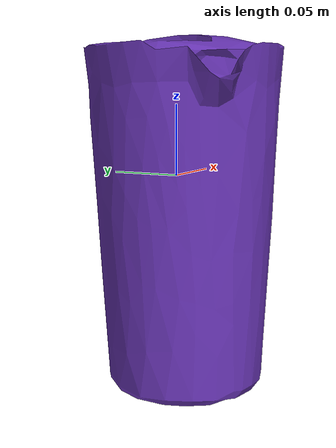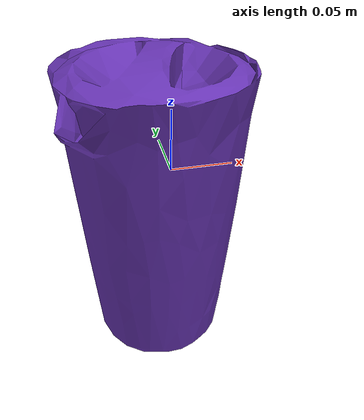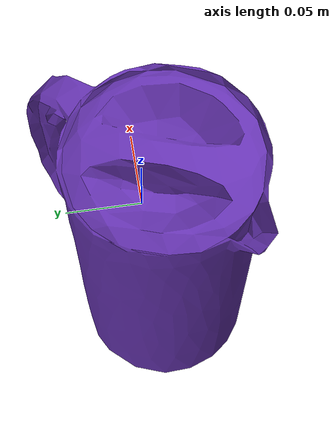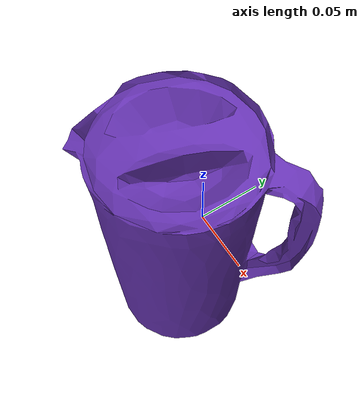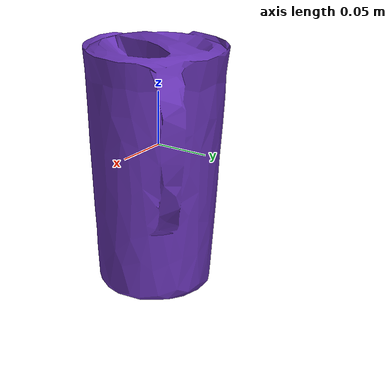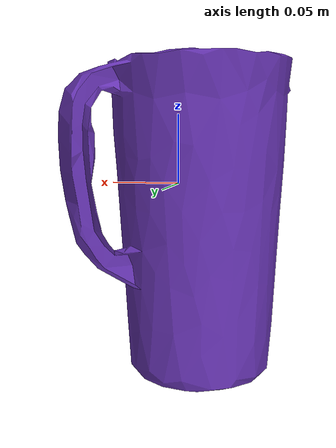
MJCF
<mujoco model="top_watertight_tiny">

  <asset>
    <mesh file="top_watertight_tiny.obj"/>
    <mesh file="top_watertight_tiny_collision_0.obj"/>
    <mesh file="top_watertight_tiny_collision_1.obj"/>
    <mesh file="top_watertight_tiny_collision_2.obj"/>
    <mesh file="top_watertight_tiny_collision_3.obj"/>
    <mesh file="top_watertight_tiny_collision_4.obj"/>
    <mesh file="top_watertight_tiny_collision_5.obj"/>
    <mesh file="top_watertight_tiny_collision_6.obj"/>
    <mesh file="top_watertight_tiny_collision_7.obj"/>
    <mesh file="top_watertight_tiny_collision_8.obj"/>
    <mesh file="top_watertight_tiny_collision_9.obj"/>
    <mesh file="top_watertight_tiny_collision_10.obj"/>
    <mesh file="top_watertight_tiny_collision_11.obj"/>
    <mesh file="top_watertight_tiny_collision_12.obj"/>
    <mesh file="top_watertight_tiny_collision_13.obj"/>
    <mesh file="top_watertight_tiny_collision_14.obj"/>
    <mesh file="top_watertight_tiny_collision_15.obj"/>
    <mesh file="top_watertight_tiny_collision_16.obj"/>
    <mesh file="top_watertight_tiny_collision_17.obj"/>
    <mesh file="top_watertight_tiny_collision_18.obj"/>
    <mesh file="top_watertight_tiny_collision_19.obj"/>
    <mesh file="top_watertight_tiny_collision_20.obj"/>
    <mesh file="top_watertight_tiny_collision_21.obj"/>
    <mesh file="top_watertight_tiny_collision_22.obj"/>
    <mesh file="top_watertight_tiny_collision_23.obj"/>
    <mesh file="top_watertight_tiny_collision_24.obj"/>
    <mesh file="top_watertight_tiny_collision_25.obj"/>
    <mesh file="top_watertight_tiny_collision_26.obj"/>
    <mesh file="top_watertight_tiny_collision_27.obj"/>
    <mesh file="top_watertight_tiny_collision_28.obj"/>
    <mesh file="top_watertight_tiny_collision_29.obj"/>
    <mesh file="top_watertight_tiny_collision_30.obj"/>
    <mesh file="top_watertight_tiny_collision_31.obj"/>
    <mesh file="top_watertight_tiny_collision_32.obj"/>
    <mesh file="top_watertight_tiny_collision_33.obj"/>
    <mesh file="top_watertight_tiny_collision_34.obj"/>
    <mesh file="top_watertight_tiny_collision_35.obj"/>
    <mesh file="top_watertight_tiny_collision_36.obj"/>
    <mesh file="top_watertight_tiny_collision_37.obj"/>
    <mesh file="top_watertight_tiny_collision_38.obj"/>
    <mesh file="top_watertight_tiny_collision_39.obj"/>
    <mesh file="top_watertight_tiny_collision_40.obj"/>
    <mesh file="top_watertight_tiny_collision_41.obj"/>
    <mesh file="top_watertight_tiny_collision_42.obj"/>
    <mesh file="top_watertight_tiny_collision_43.obj"/>
    <mesh file="top_watertight_tiny_collision_44.obj"/>
    <mesh file="top_watertight_tiny_collision_45.obj"/>
    <mesh file="top_watertight_tiny_collision_46.obj"/>
    <mesh file="top_watertight_tiny_collision_47.obj"/>
    <mesh file="top_watertight_tiny_collision_48.obj"/>
    <mesh file="top_watertight_tiny_collision_49.obj"/>
    <mesh file="top_watertight_tiny_collision_50.obj"/>
    <mesh file="top_watertight_tiny_collision_51.obj"/>
    <mesh file="top_watertight_tiny_collision_52.obj"/>
    <mesh file="top_watertight_tiny_collision_53.obj"/>
    <mesh file="top_watertight_tiny_collision_54.obj"/>
    <mesh file="top_watertight_tiny_collision_55.obj"/>
    <mesh file="top_watertight_tiny_collision_56.obj"/>
    <mesh file="top_watertight_tiny_collision_57.obj"/>
    <mesh file="top_watertight_tiny_collision_58.obj"/>
    <mesh file="top_watertight_tiny_collision_59.obj"/>
    <mesh file="top_watertight_tiny_collision_60.obj"/>
    <mesh file="top_watertight_tiny_collision_61.obj"/>
    <mesh file="top_watertight_tiny_collision_62.obj"/>
    <mesh file="top_watertight_tiny_collision_63.obj"/>
    <mesh file="top_watertight_tiny_collision_64.obj"/>
    <mesh file="top_watertight_tiny_collision_65.obj"/>
    <mesh file="top_watertight_tiny_collision_66.obj"/>
    <mesh file="top_watertight_tiny_collision_67.obj"/>
    <mesh file="top_watertight_tiny_collision_68.obj"/>
  </asset>
  <worldbody>
    <body name="top_watertight_tiny">
      <freejoint/>
      <geom solimp="0.90 0.95 0.001" solref="0.02 1.0" density="100" friction="0.95 0.4 0.3" rgba="0.4 0.2 0.7 1" mesh="top_watertight_tiny" group="2" type="mesh" contype="0" conaffinity="0"/>
      <geom solimp="0.90 0.95 0.001" solref="0.02 1.0" density="100" friction="0.95 0.4 0.3" mesh="top_watertight_tiny_collision_0" rgba="0.09766624977383909 0.3546566655625226 0.20399138649244397 1" group="3" type="mesh"/>
      <geom solimp="0.90 0.95 0.001" solref="0.02 1.0" density="100" friction="0.95 0.4 0.3" mesh="top_watertight_tiny_collision_1" rgba="0.05361865246177644 0.8553471082003934 0.48078182868725616 1" group="3" type="mesh"/>
      <geom solimp="0.90 0.95 0.001" solref="0.02 1.0" density="100" friction="0.95 0.4 0.3" mesh="top_watertight_tiny_collision_2" rgba="0.2746569304059828 0.6661173623796848 0.7236049873286292 1" group="3" type="mesh"/>
      <geom solimp="0.90 0.95 0.001" solref="0.02 1.0" density="100" friction="0.95 0.4 0.3" mesh="top_watertight_tiny_collision_3" rgba="0.42864814727071576 0.2427885643295048 0.28581963119046827 1" group="3" type="mesh"/>
      <geom solimp="0.90 0.95 0.001" solref="0.02 1.0" density="100" friction="0.95 0.4 0.3" mesh="top_watertight_tiny_collision_4" rgba="0.9146415039612894 0.61667083368681 0.8029528952548596 1" group="3" type="mesh"/>
      <geom solimp="0.90 0.95 0.001" solref="0.02 1.0" density="100" friction="0.95 0.4 0.3" mesh="top_watertight_tiny_collision_5" rgba="0.6040030340754534 0.8315707520173987 0.9879570631673656 1" group="3" type="mesh"/>
      <geom solimp="0.90 0.95 0.001" solref="0.02 1.0" density="100" friction="0.95 0.4 0.3" mesh="top_watertight_tiny_collision_6" rgba="0.8109346080811572 0.8589877003977403 0.5159059558337682 1" group="3" type="mesh"/>
      <geom solimp="0.90 0.95 0.001" solref="0.02 1.0" density="100" friction="0.95 0.4 0.3" mesh="top_watertight_tiny_collision_7" rgba="0.4519258328440896 0.0766380703431957 0.32050038010308257 1" group="3" type="mesh"/>
      <geom solimp="0.90 0.95 0.001" solref="0.02 1.0" density="100" friction="0.95 0.4 0.3" mesh="top_watertight_tiny_collision_8" rgba="0.5857259995561694 0.0814681502479766 0.9224789371722181 1" group="3" type="mesh"/>
      <geom solimp="0.90 0.95 0.001" solref="0.02 1.0" density="100" friction="0.95 0.4 0.3" mesh="top_watertight_tiny_collision_9" rgba="0.9800314975547386 0.5998360979925912 0.25002626718973353 1" group="3" type="mesh"/>
      <geom solimp="0.90 0.95 0.001" solref="0.02 1.0" density="100" friction="0.95 0.4 0.3" mesh="top_watertight_tiny_collision_10" rgba="0.5926387532759257 0.6309308878529857 0.2800042597025616 1" group="3" type="mesh"/>
      <geom solimp="0.90 0.95 0.001" solref="0.02 1.0" density="100" friction="0.95 0.4 0.3" mesh="top_watertight_tiny_collision_11" rgba="0.044118942324951504 0.07751099765675917 0.9493785411908312 1" group="3" type="mesh"/>
      <geom solimp="0.90 0.95 0.001" solref="0.02 1.0" density="100" friction="0.95 0.4 0.3" mesh="top_watertight_tiny_collision_12" rgba="0.17944216983008587 0.9480532829534688 0.6015012794002838 1" group="3" type="mesh"/>
      <geom solimp="0.90 0.95 0.001" solref="0.02 1.0" density="100" friction="0.95 0.4 0.3" mesh="top_watertight_tiny_collision_13" rgba="0.28725747131496027 0.7029996332158314 0.22821774530063044 1" group="3" type="mesh"/>
      <geom solimp="0.90 0.95 0.001" solref="0.02 1.0" density="100" friction="0.95 0.4 0.3" mesh="top_watertight_tiny_collision_14" rgba="0.40854519446854987 0.6360129311948726 0.8974348707214267 1" group="3" type="mesh"/>
      <geom solimp="0.90 0.95 0.001" solref="0.02 1.0" density="100" friction="0.95 0.4 0.3" mesh="top_watertight_tiny_collision_15" rgba="0.46236168685677737 0.7093226868700189 0.9998336147649447 1" group="3" type="mesh"/>
      <geom solimp="0.90 0.95 0.001" solref="0.02 1.0" density="100" friction="0.95 0.4 0.3" mesh="top_watertight_tiny_collision_16" rgba="0.14086398761921193 0.32838733656316865 0.8920754504470935 1" group="3" type="mesh"/>
      <geom solimp="0.90 0.95 0.001" solref="0.02 1.0" density="100" friction="0.95 0.4 0.3" mesh="top_watertight_tiny_collision_17" rgba="0.9875475628618864 0.07133352975997775 0.6564872191780593 1" group="3" type="mesh"/>
      <geom solimp="0.90 0.95 0.001" solref="0.02 1.0" density="100" friction="0.95 0.4 0.3" mesh="top_watertight_tiny_collision_18" rgba="0.8273256248222369 0.37464310257676237 0.5105435184452988 1" group="3" type="mesh"/>
      <geom solimp="0.90 0.95 0.001" solref="0.02 1.0" density="100" friction="0.95 0.4 0.3" mesh="top_watertight_tiny_collision_19" rgba="0.6360250354400983 0.899591656085263 0.709666930218179 1" group="3" type="mesh"/>
      <geom solimp="0.90 0.95 0.001" solref="0.02 1.0" density="100" friction="0.95 0.4 0.3" mesh="top_watertight_tiny_collision_20" rgba="0.1475667331244842 0.06155460744413388 0.5674626763839844 1" group="3" type="mesh"/>
      <geom solimp="0.90 0.95 0.001" solref="0.02 1.0" density="100" friction="0.95 0.4 0.3" mesh="top_watertight_tiny_collision_21" rgba="0.8103239121428311 0.8757096800824308 0.07192933657725409 1" group="3" type="mesh"/>
      <geom solimp="0.90 0.95 0.001" solref="0.02 1.0" density="100" friction="0.95 0.4 0.3" mesh="top_watertight_tiny_collision_22" rgba="0.008236774208898678 0.6504155148828104 0.09047677162058843 1" group="3" type="mesh"/>
      <geom solimp="0.90 0.95 0.001" solref="0.02 1.0" density="100" friction="0.95 0.4 0.3" mesh="top_watertight_tiny_collision_23" rgba="0.2723838878503917 0.6228469133356461 0.5784132784363177 1" group="3" type="mesh"/>
      <geom solimp="0.90 0.95 0.001" solref="0.02 1.0" density="100" friction="0.95 0.4 0.3" mesh="top_watertight_tiny_collision_24" rgba="0.8713829472735479 0.06802648040873027 0.1849101628016251 1" group="3" type="mesh"/>
      <geom solimp="0.90 0.95 0.001" solref="0.02 1.0" density="100" friction="0.95 0.4 0.3" mesh="top_watertight_tiny_collision_25" rgba="0.4418402844986776 0.023388682121598503 0.48685632654203903 1" group="3" type="mesh"/>
      <geom solimp="0.90 0.95 0.001" solref="0.02 1.0" density="100" friction="0.95 0.4 0.3" mesh="top_watertight_tiny_collision_26" rgba="0.7747050804207242 0.2675377350125139 0.4341722574398501 1" group="3" type="mesh"/>
      <geom solimp="0.90 0.95 0.001" solref="0.02 1.0" density="100" friction="0.95 0.4 0.3" mesh="top_watertight_tiny_collision_27" rgba="0.821346878705229 0.4752979487745812 0.9016567302826322 1" group="3" type="mesh"/>
      <geom solimp="0.90 0.95 0.001" solref="0.02 1.0" density="100" friction="0.95 0.4 0.3" mesh="top_watertight_tiny_collision_28" rgba="0.8604638863535634 0.6569091008381344 0.3574371097941015 1" group="3" type="mesh"/>
      <geom solimp="0.90 0.95 0.001" solref="0.02 1.0" density="100" friction="0.95 0.4 0.3" mesh="top_watertight_tiny_collision_29" rgba="0.6827966207454697 0.7440708583894869 0.698525692592996 1" group="3" type="mesh"/>
      <geom solimp="0.90 0.95 0.001" solref="0.02 1.0" density="100" friction="0.95 0.4 0.3" mesh="top_watertight_tiny_collision_30" rgba="0.464378743418452 0.77226655997253 0.9648850857812324 1" group="3" type="mesh"/>
      <geom solimp="0.90 0.95 0.001" solref="0.02 1.0" density="100" friction="0.95 0.4 0.3" mesh="top_watertight_tiny_collision_31" rgba="0.7885594598948393 0.4177517870885419 0.5469111579805424 1" group="3" type="mesh"/>
      <geom solimp="0.90 0.95 0.001" solref="0.02 1.0" density="100" friction="0.95 0.4 0.3" mesh="top_watertight_tiny_collision_32" rgba="0.771794360775896 0.5222478276501951 0.3686657368091444 1" group="3" type="mesh"/>
      <geom solimp="0.90 0.95 0.001" solref="0.02 1.0" density="100" friction="0.95 0.4 0.3" mesh="top_watertight_tiny_collision_33" rgba="0.5082039151996061 0.7105238845251861 0.5267557146781695 1" group="3" type="mesh"/>
      <geom solimp="0.90 0.95 0.001" solref="0.02 1.0" density="100" friction="0.95 0.4 0.3" mesh="top_watertight_tiny_collision_34" rgba="0.8992705179388851 0.032608875665142034 0.23712951429940055 1" group="3" type="mesh"/>
      <geom solimp="0.90 0.95 0.001" solref="0.02 1.0" density="100" friction="0.95 0.4 0.3" mesh="top_watertight_tiny_collision_35" rgba="0.5386585956973085 0.06660963334792613 0.7020614819241545 1" group="3" type="mesh"/>
      <geom solimp="0.90 0.95 0.001" solref="0.02 1.0" density="100" friction="0.95 0.4 0.3" mesh="top_watertight_tiny_collision_36" rgba="0.09528149912690509 0.997056561821665 0.2042692542862402 1" group="3" type="mesh"/>
      <geom solimp="0.90 0.95 0.001" solref="0.02 1.0" density="100" friction="0.95 0.4 0.3" mesh="top_watertight_tiny_collision_37" rgba="0.1348785760217739 0.8602038771729962 0.2016510128463651 1" group="3" type="mesh"/>
      <geom solimp="0.90 0.95 0.001" solref="0.02 1.0" density="100" friction="0.95 0.4 0.3" mesh="top_watertight_tiny_collision_38" rgba="0.03410524268114401 0.1133965893213994 0.0638184445553528 1" group="3" type="mesh"/>
      <geom solimp="0.90 0.95 0.001" solref="0.02 1.0" density="100" friction="0.95 0.4 0.3" mesh="top_watertight_tiny_collision_39" rgba="0.05668844452879851 0.13492397261831113 0.18953189389152725 1" group="3" type="mesh"/>
      <geom solimp="0.90 0.95 0.001" solref="0.02 1.0" density="100" friction="0.95 0.4 0.3" mesh="top_watertight_tiny_collision_40" rgba="0.6501519543278267 0.18942061772652252 0.10540628296116217 1" group="3" type="mesh"/>
      <geom solimp="0.90 0.95 0.001" solref="0.02 1.0" density="100" friction="0.95 0.4 0.3" mesh="top_watertight_tiny_collision_41" rgba="0.2738161667636958 0.9627525220766764 0.273326374330607 1" group="3" type="mesh"/>
      <geom solimp="0.90 0.95 0.001" solref="0.02 1.0" density="100" friction="0.95 0.4 0.3" mesh="top_watertight_tiny_collision_42" rgba="0.7014179106690648 0.5872454723258718 0.2346202760669962 1" group="3" type="mesh"/>
      <geom solimp="0.90 0.95 0.001" solref="0.02 1.0" density="100" friction="0.95 0.4 0.3" mesh="top_watertight_tiny_collision_43" rgba="0.44569743527599126 0.056249668703335254 0.1773887236299282 1" group="3" type="mesh"/>
      <geom solimp="0.90 0.95 0.001" solref="0.02 1.0" density="100" friction="0.95 0.4 0.3" mesh="top_watertight_tiny_collision_44" rgba="0.7252034795715573 0.952061398087905 0.1641457503049879 1" group="3" type="mesh"/>
      <geom solimp="0.90 0.95 0.001" solref="0.02 1.0" density="100" friction="0.95 0.4 0.3" mesh="top_watertight_tiny_collision_45" rgba="0.35060654918444134 0.667810173861041 0.34689798704777164 1" group="3" type="mesh"/>
      <geom solimp="0.90 0.95 0.001" solref="0.02 1.0" density="100" friction="0.95 0.4 0.3" mesh="top_watertight_tiny_collision_46" rgba="0.3037968507511575 0.27285913572069476 0.504960405875515 1" group="3" type="mesh"/>
      <geom solimp="0.90 0.95 0.001" solref="0.02 1.0" density="100" friction="0.95 0.4 0.3" mesh="top_watertight_tiny_collision_47" rgba="0.9873479107945161 0.6217717848358372 0.882100090861781 1" group="3" type="mesh"/>
      <geom solimp="0.90 0.95 0.001" solref="0.02 1.0" density="100" friction="0.95 0.4 0.3" mesh="top_watertight_tiny_collision_48" rgba="0.06355530796100584 0.16008136571429854 0.45317470029410833 1" group="3" type="mesh"/>
      <geom solimp="0.90 0.95 0.001" solref="0.02 1.0" density="100" friction="0.95 0.4 0.3" mesh="top_watertight_tiny_collision_49" rgba="0.02074977857368232 0.12632197485531182 0.08436417727834555 1" group="3" type="mesh"/>
      <geom solimp="0.90 0.95 0.001" solref="0.02 1.0" density="100" friction="0.95 0.4 0.3" mesh="top_watertight_tiny_collision_50" rgba="0.4654165177546701 0.1762889861961865 0.6804851572263038 1" group="3" type="mesh"/>
      <geom solimp="0.90 0.95 0.001" solref="0.02 1.0" density="100" friction="0.95 0.4 0.3" mesh="top_watertight_tiny_collision_51" rgba="0.6739249621857195 0.8688833022057498 0.15931079741929421 1" group="3" type="mesh"/>
      <geom solimp="0.90 0.95 0.001" solref="0.02 1.0" density="100" friction="0.95 0.4 0.3" mesh="top_watertight_tiny_collision_52" rgba="0.8515206309959692 0.4962293456074969 0.842078111916183 1" group="3" type="mesh"/>
      <geom solimp="0.90 0.95 0.001" solref="0.02 1.0" density="100" friction="0.95 0.4 0.3" mesh="top_watertight_tiny_collision_53" rgba="0.6542375680549788 0.22275444112134202 0.3241425398084712 1" group="3" type="mesh"/>
      <geom solimp="0.90 0.95 0.001" solref="0.02 1.0" density="100" friction="0.95 0.4 0.3" mesh="top_watertight_tiny_collision_54" rgba="0.4204023705550367 0.8767098095532535 0.9074804810583155 1" group="3" type="mesh"/>
      <geom solimp="0.90 0.95 0.001" solref="0.02 1.0" density="100" friction="0.95 0.4 0.3" mesh="top_watertight_tiny_collision_55" rgba="0.38069272057621717 0.09226853786870459 0.08018050678543542 1" group="3" type="mesh"/>
      <geom solimp="0.90 0.95 0.001" solref="0.02 1.0" density="100" friction="0.95 0.4 0.3" mesh="top_watertight_tiny_collision_56" rgba="0.48217040521427745 0.6606386632476973 0.10007757068065504 1" group="3" type="mesh"/>
      <geom solimp="0.90 0.95 0.001" solref="0.02 1.0" density="100" friction="0.95 0.4 0.3" mesh="top_watertight_tiny_collision_57" rgba="0.41250879652217476 0.16000317122593044 0.12528523651570178 1" group="3" type="mesh"/>
      <geom solimp="0.90 0.95 0.001" solref="0.02 1.0" density="100" friction="0.95 0.4 0.3" mesh="top_watertight_tiny_collision_58" rgba="0.7083550463506192 0.23009623536290724 0.5170362087492217 1" group="3" type="mesh"/>
      <geom solimp="0.90 0.95 0.001" solref="0.02 1.0" density="100" friction="0.95 0.4 0.3" mesh="top_watertight_tiny_collision_59" rgba="0.7054159744048033 0.951990311191368 0.15851816349718428 1" group="3" type="mesh"/>
      <geom solimp="0.90 0.95 0.001" solref="0.02 1.0" density="100" friction="0.95 0.4 0.3" mesh="top_watertight_tiny_collision_60" rgba="0.9108980420801056 0.8343246667369248 0.5032936012143637 1" group="3" type="mesh"/>
      <geom solimp="0.90 0.95 0.001" solref="0.02 1.0" density="100" friction="0.95 0.4 0.3" mesh="top_watertight_tiny_collision_61" rgba="0.678289393402381 0.20191356729929733 0.5889089507072364 1" group="3" type="mesh"/>
      <geom solimp="0.90 0.95 0.001" solref="0.02 1.0" density="100" friction="0.95 0.4 0.3" mesh="top_watertight_tiny_collision_62" rgba="0.3912240171889143 0.9213495470413055 0.8723475956028895 1" group="3" type="mesh"/>
      <geom solimp="0.90 0.95 0.001" solref="0.02 1.0" density="100" friction="0.95 0.4 0.3" mesh="top_watertight_tiny_collision_63" rgba="0.011970814723839762 0.4866587606983822 0.33960626439345887 1" group="3" type="mesh"/>
      <geom solimp="0.90 0.95 0.001" solref="0.02 1.0" density="100" friction="0.95 0.4 0.3" mesh="top_watertight_tiny_collision_64" rgba="0.08187182613104016 0.38669353234337045 0.9974357629022408 1" group="3" type="mesh"/>
      <geom solimp="0.90 0.95 0.001" solref="0.02 1.0" density="100" friction="0.95 0.4 0.3" mesh="top_watertight_tiny_collision_65" rgba="0.7461643208710625 0.02501082464357618 0.37419529410454133 1" group="3" type="mesh"/>
      <geom solimp="0.90 0.95 0.001" solref="0.02 1.0" density="100" friction="0.95 0.4 0.3" mesh="top_watertight_tiny_collision_66" rgba="0.6681536673742252 0.792946837669575 0.4197625033949145 1" group="3" type="mesh"/>
      <geom solimp="0.90 0.95 0.001" solref="0.02 1.0" density="100" friction="0.95 0.4 0.3" mesh="top_watertight_tiny_collision_67" rgba="0.49331693798120346 0.7213081046964176 0.14552356701136682 1" group="3" type="mesh"/>
      <geom solimp="0.90 0.95 0.001" solref="0.02 1.0" density="100" friction="0.95 0.4 0.3" mesh="top_watertight_tiny_collision_68" rgba="0.522404600539358 0.9551711345829006 0.5171699269856147 1" group="3" type="mesh"/>
    </body>
  </worldbody>
</mujoco>
